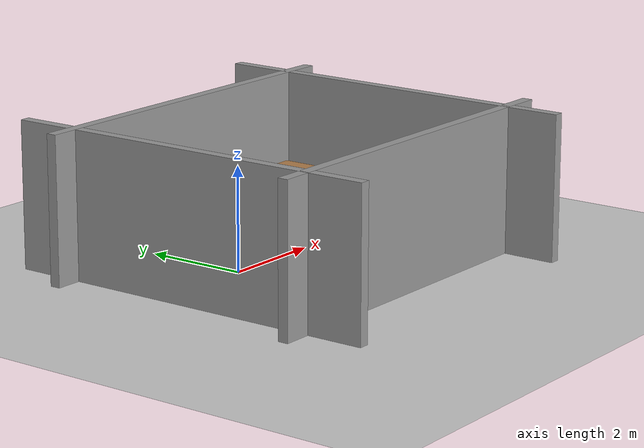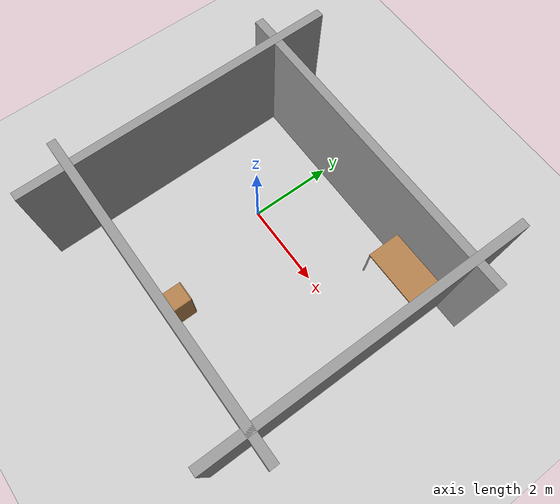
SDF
<sdf version="1.6">
 <world name="default">
  <light name="sun" type="directional">
   <pose>0 0 15 0 -0 0</pose>
   <diffuse>1 1 1 1</diffuse>
   <specular>0.1 0.1 0.1 1</specular>
   <attenuation>
    <range>1000</range>
    <constant>0.9</constant>
    <linear>0.01</linear>
    <quadratic>0.001</quadratic>
   </attenuation>
   <direction>-0.5 0.5 -1</direction>
  </light>
  <model name="ground_plane">
   <static>1</static>
   <link name="link">
    <collision name="collision">
     <geometry><plane><normal>0 0 1</normal><size>100 100</size></plane></geometry>
     <surface><friction><ode><mu>100</mu><mu2>50</mu2></ode></friction></surface>
    </collision>
    <visual name="visual">
     <transparency>1</transparency>
     <cast_shadows>0</cast_shadows>
     <geometry><plane><normal>0 0 1</normal><size>100 100</size></plane></geometry>
     <material>
      <script><uri>file://media/materials/scripts/gazebo.material</uri><name>Gazebo/Grey</name></script>
     </material>
    </visual>
   </link>
  </model>
  <gravity>0 0 -9.8</gravity>
  <magnetic_field>6e-06 2.3e-05 -4.2e-05</magnetic_field>
  <atmosphere type="adiabatic"/>
  <physics name="default_physics" default="0" type="ode">
   <max_step_size>0.001</max_step_size>
   <real_time_factor>1</real_time_factor>
   <real_time_update_rate>1000</real_time_update_rate>
  </physics>
  <scene><ambient>0.4 0.4 0.4 1</ambient><background>0.7 0.7 0.7 1</background><shadows>1</shadows></scene>
  <spherical_coordinates>
   <surface_model>EARTH_WGS84</surface_model>
   <latitude_deg>0</latitude_deg>
   <longitude_deg>0</longitude_deg>
   <elevation>0</elevation>
   <heading_deg>0</heading_deg>
  </spherical_coordinates>
  <model name="grey_wall">
   <static>1</static>
   <link name="link">
    <pose>0 0 1.4 0 -0 0</pose>
    <collision name="collision"><geometry><box><size>7.5 0.2 2.8</size></box></geometry></collision>
    <visual name="visual">
     <cast_shadows>0</cast_shadows>
     <geometry><box><size>7.5 0.2 2.8</size></box></geometry>
     <material>
      <script>
       <uri>model://grey_wall/materials/scripts</uri>
       <uri>model://grey_wall/materials/textures</uri>
       <name>vrc/grey_wall</name>
      </script>
     </material>
    </visual>
   </link>
   <pose>1.0562 -3.09185 0 0 -0 0</pose>
  </model>
  <model name="grey_wall_clone">
   <static>1</static>
   <link name="link">
    <pose>0 0 1.4 0 -0 0</pose>
    <collision name="collision"><geometry><box><size>7.5 0.2 2.8</size></box></geometry></collision>
    <visual name="visual">
     <cast_shadows>0</cast_shadows>
     <geometry><box><size>7.5 0.2 2.8</size></box></geometry>
     <material>
      <script>
       <uri>model://grey_wall/materials/scripts</uri>
       <uri>model://grey_wall/materials/textures</uri>
       <name>vrc/grey_wall</name>
      </script>
     </material>
    </visual>
   </link>
   <pose>1.05776 2.02377 0 0 -0 0</pose>
  </model>
  <model name="grey_wall_clone_0">
   <static>1</static>
   <link name="link">
    <pose>0 0 1.4 0 -0 0</pose>
    <collision name="collision"><geometry><box><size>7.5 0.2 2.8</size></box></geometry></collision>
    <visual name="visual">
     <cast_shadows>0</cast_shadows>
     <geometry><box><size>7.5 0.2 2.8</size></box></geometry>
     <material>
      <script>
       <uri>model://grey_wall/materials/scripts</uri>
       <uri>model://grey_wall/materials/textures</uri>
       <name>vrc/grey_wall</name>
      </script>
     </material>
    </visual>
   </link>
   <pose>-2.06051 -0.51932 0 0 -0 1.57775</pose>
  </model>
  <model name="grey_wall_clone_0_clone">
   <static>1</static>
   <link name="link">
    <pose>0 0 1.4 0 -0 0</pose>
    <collision name="collision"><geometry><box><size>7.5 0.2 2.8</size></box></geometry></collision>
    <visual name="visual">
     <cast_shadows>0</cast_shadows>
     <geometry><box><size>7.5 0.2 2.8</size></box></geometry>
     <material>
      <script>
       <uri>model://grey_wall/materials/scripts</uri>
       <uri>model://grey_wall/materials/textures</uri>
       <name>vrc/grey_wall</name>
      </script>
     </material>
    </visual>
   </link>
   <pose>4.10474 -0.465949 0 0 -0 1.56318</pose>
  </model>
  <model name="table">
   <static>0</static>
   <link name="link">
    <collision name="surface">
     <pose>0 0 1 0 -0 0</pose>
     <geometry><box><size>1.5 0.8 0.03</size></box></geometry>
     <surface><friction><ode><mu>0.6</mu><mu2>0.6</mu2></ode></friction></surface>
    </collision>
    <visual name="visual1">
     <pose>0 0 1 0 -0 0</pose>
     <geometry><box><size>1.4 0.8 0.04</size></box></geometry>
     <material>
      <script><uri>file://media/materials/scripts/gazebo.material</uri><name>Gazebo/Wood</name></script>
     </material>
    </visual>
    <collision name="front_left_leg">
     <pose>0.68 0.38 0.5 0 -0 0</pose>
     <geometry><cylinder><radius>0.02</radius><length>1</length></cylinder></geometry>
    </collision>
    <visual name="front_left_leg">
     <pose>0.68 0.38 0.5 0 -0 0</pose>
     <geometry><cylinder><radius>0.02</radius><length>1</length></cylinder></geometry>
     <material>
      <script><uri>file://media/materials/scripts/gazebo.material</uri><name>Gazebo/Grey</name></script>
     </material>
    </visual>
    <collision name="front_right_leg">
     <pose>0.68 -0.38 0.5 0 -0 0</pose>
     <geometry><cylinder><radius>0.02</radius><length>1</length></cylinder></geometry>
    </collision>
    <visual name="front_right_leg">
     <pose>0.68 -0.38 0.5 0 -0 0</pose>
     <geometry><cylinder><radius>0.02</radius><length>1</length></cylinder></geometry>
     <material>
      <script><uri>file://media/materials/scripts/gazebo.material</uri><name>Gazebo/Grey</name></script>
     </material>
    </visual>
    <collision name="back_right_leg">
     <pose>-0.68 -0.38 0.5 0 -0 0</pose>
     <geometry><cylinder><radius>0.02</radius><length>1</length></cylinder></geometry>
    </collision>
    <visual name="back_right_leg">
     <pose>-0.68 -0.38 0.5 0 -0 0</pose>
     <geometry><cylinder><radius>0.02</radius><length>1</length></cylinder></geometry>
     <material>
      <script><uri>file://media/materials/scripts/gazebo.material</uri><name>Gazebo/Grey</name></script>
     </material>
    </visual>
    <collision name="back_left_leg">
     <pose>-0.68 0.38 0.5 0 -0 0</pose>
     <geometry><cylinder><radius>0.02</radius><length>1</length></cylinder></geometry>
    </collision>
    <visual name="back_left_leg">
     <pose>-0.68 0.38 0.5 0 -0 0</pose>
     <geometry><cylinder><radius>0.02</radius><length>1</length></cylinder></geometry>
     <material>
      <script><uri>file://media/materials/scripts/gazebo.material</uri><name>Gazebo/Grey</name></script>
     </material>
    </visual>
    <inertial>
     <inertia><ixx>1</ixx><ixy>0</ixy><ixz>0</ixz><iyy>1</iyy><iyz>0</iyz><izz>1</izz></inertia>
     <mass>1</mass>
    </inertial>
   </link>
   <pose>3.26691 1.52366 -1e-06 -2e-06 -0 -0.000151</pose>
  </model>
  <model name="cabinet">
   <static>1</static>
   <link name="cabinet_bottom_plate">
    <inertial>
     <pose>0 0 -1 0 -0 0</pose>
     <inertia><ixx>2.05</ixx><ixy>0</ixy><ixz>0</ixz><iyy>2.05</iyy><iyz>0</iyz><izz>2.05</izz></inertia>
     <mass>25</mass>
    </inertial>
    <collision name="cabinet_bottom_plate_geom">
     <pose>0 0 0.01 0 -0 0</pose>
     <geometry><box><size>0.45 0.45 0.02</size></box></geometry>
    </collision>
    <visual name="cabinet_bottom_plate_geom_visual">
     <pose>0 0 0.01 0 -0 0</pose>
     <geometry><box><size>0.45 0.45 0.02</size></box></geometry>
     <material>
      <script><uri>file://media/materials/scripts/gazebo.material</uri><name>Gazebo/Wood</name></script>
     </material>
    </visual>
    <collision name="cabinet_bottom_plate_geom_cabinet_back_plate">
     <pose>0.235 0 0.51 0 -0 0</pose>
     <geometry><box><size>0.02 0.45 1.02</size></box></geometry>
    </collision>
    <visual name="cabinet_bottom_plate_geom_cabinet_back_plate_visual">
     <pose>0.235 0 0.51 0 -0 0</pose>
     <geometry><box><size>0.02 0.45 1.02</size></box></geometry>
     <material>
      <script><uri>file://media/materials/scripts/gazebo.material</uri><name>Gazebo/Wood</name></script>
     </material>
    </visual>
    <collision name="cabinet_bottom_plate_geom_cabinet_left_plate">
     <pose>0 0.235 0.51 0 -0 0</pose>
     <geometry><box><size>0.45 0.02 1.02</size></box></geometry>
    </collision>
    <visual name="cabinet_bottom_plate_geom_cabinet_left_plate_visual">
     <pose>0 0.235 0.51 0 -0 0</pose>
     <geometry><box><size>0.45 0.02 1.02</size></box></geometry>
     <material>
      <script><uri>file://media/materials/scripts/gazebo.material</uri><name>Gazebo/Wood</name></script>
     </material>
    </visual>
    <collision name="cabinet_bottom_plate_geom_cabinet_middle_plate">
     <pose>0 0 0.51 0 -0 0</pose>
     <geometry><box><size>0.45 0.45 0.02</size></box></geometry>
    </collision>
    <visual name="cabinet_bottom_plate_geom_cabinet_middle_plate_visual">
     <pose>0 0 0.51 0 -0 0</pose>
     <geometry><box><size>0.45 0.45 0.02</size></box></geometry>
     <material>
      <script><uri>file://media/materials/scripts/gazebo.material</uri><name>Gazebo/Wood</name></script>
     </material>
    </visual>
    <collision name="cabinet_bottom_plate_geom_cabinet_right_plate">
     <pose>0 -0.235 0.51 0 -0 0</pose>
     <geometry><box><size>0.45 0.02 1.02</size></box></geometry>
    </collision>
    <visual name="cabinet_bottom_plate_geom_cabinet_right_plate_visual">
     <pose>0 -0.235 0.51 0 -0 0</pose>
     <geometry><box><size>0.45 0.02 1.02</size></box></geometry>
     <material>
      <script><uri>file://media/materials/scripts/gazebo.material</uri><name>Gazebo/Wood</name></script>
     </material>
    </visual>
    <collision name="cabinet_bottom_plate_geom_cabinet_top_plate">
     <pose>0 0 1.01 0 -0 0</pose>
     <geometry><box><size>0.45 0.45 0.02</size></box></geometry>
    </collision>
    <visual name="cabinet_bottom_plate_geom_cabinet_top_plate_visual">
     <pose>0 0 1.01 0 -0 0</pose>
     <geometry><box><size>0.45 0.45 0.02</size></box></geometry>
     <material>
      <script><uri>file://media/materials/scripts/gazebo.material</uri><name>Gazebo/Wood</name></script>
     </material>
    </visual>
   </link>
   <pose>0.896716 -2.75031 0 0 -0 0</pose>
  </model>
 </world>
</sdf>
